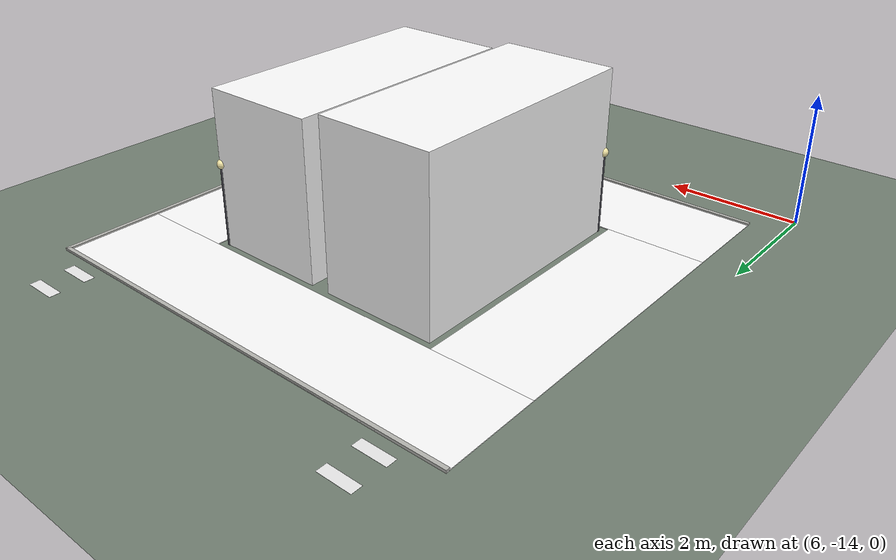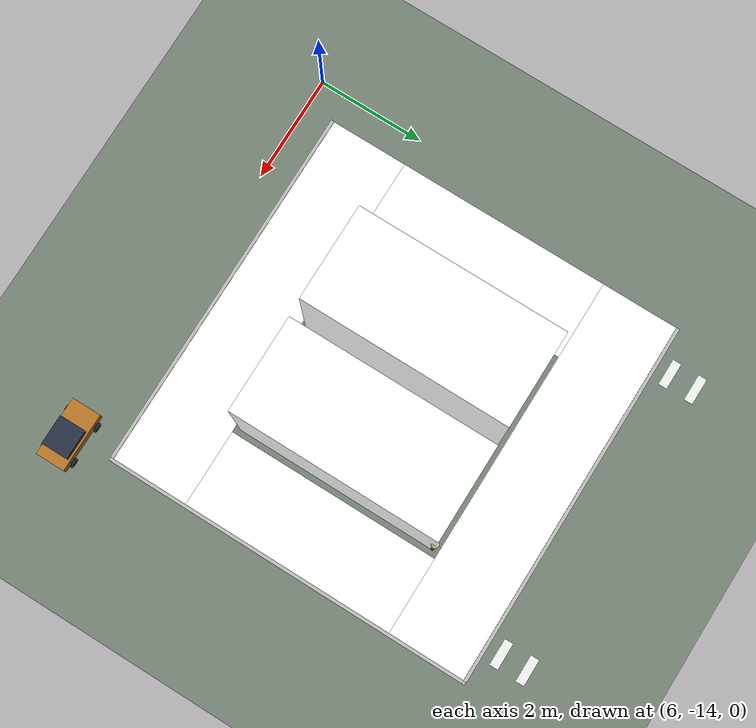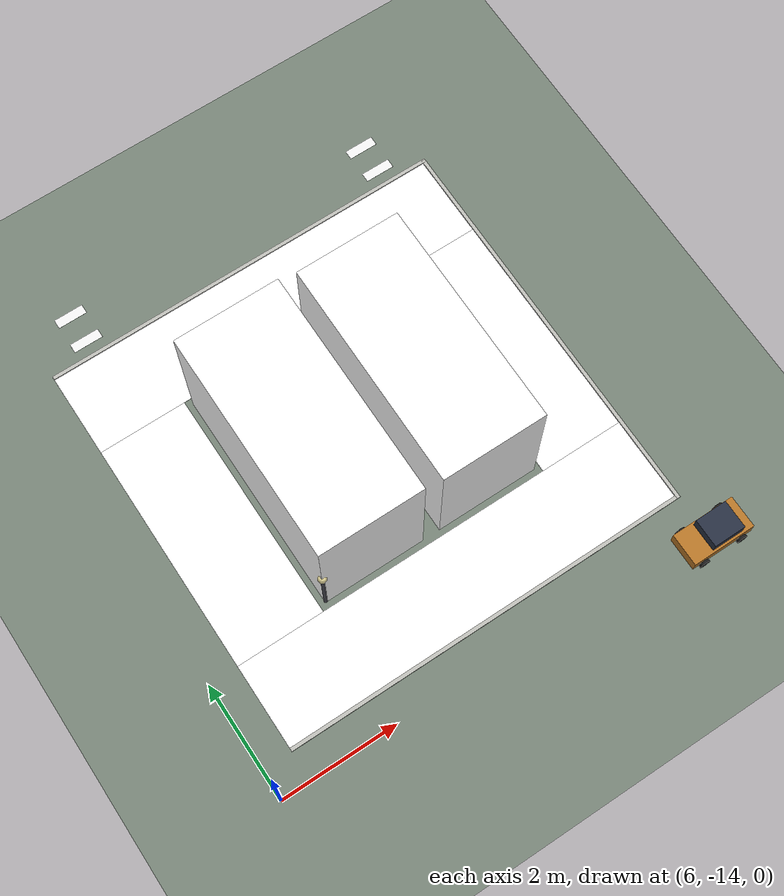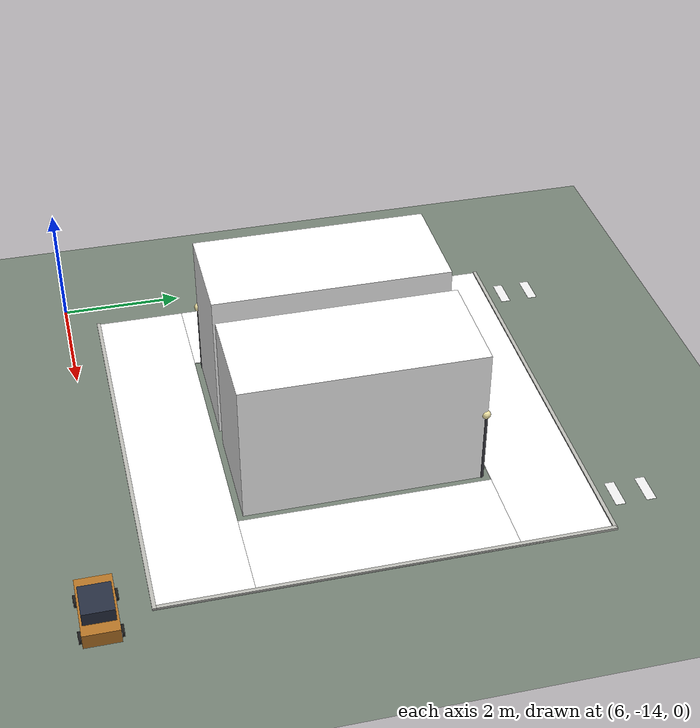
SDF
<sdf version="1.9">
 <world name="limo_city_blocks">
  <model name="ground_plane">
   <static>true</static>
   <link name="link">
    <collision name="collision">
     <geometry><plane><normal>0 0 1</normal><size>53 53</size></plane></geometry>
     <surface><friction><ode><mu>0.8</mu><mu2>0.8</mu2></ode></friction></surface>
    </collision>
    <visual name="visual">
     <geometry><plane><normal>0 0 1</normal><size>53 53</size></plane></geometry>
     <material><ambient>0.45 0.5 0.45 1</ambient><diffuse>0.45 0.5 0.45 1</diffuse></material>
    </visual>
   </link>
  </model>
  <model name="walk_s_2_0">
   <static>true</static>
   <pose>10.000 -12.750 0.008 0 0 0.000</pose>
   <link name="link">
    <visual name="visual">
     <geometry><box><size>7.000 1.500 0.012</size></box></geometry>
     <material>
      <ambient>1 1 1 1</ambient>
      <diffuse>1 1 1 1</diffuse>
      <pbr>
       <metal>
        <albedo_map>model://city_textures/paving.png</albedo_map>
        <roughness>0.85</roughness>
        <metalness>0.0</metalness>
       </metal>
      </pbr>
     </material>
    </visual>
   </link>
  </model>
  <model name="walk_n_2_0">
   <static>true</static>
   <pose>10.000 -7.250 0.008 0 0 0.000</pose>
   <link name="link">
    <visual name="visual">
     <geometry><box><size>7.000 1.500 0.012</size></box></geometry>
     <material>
      <ambient>1 1 1 1</ambient>
      <diffuse>1 1 1 1</diffuse>
      <pbr>
       <metal>
        <albedo_map>model://city_textures/paving.png</albedo_map>
        <roughness>0.85</roughness>
        <metalness>0.0</metalness>
       </metal>
      </pbr>
     </material>
    </visual>
   </link>
  </model>
  <model name="walk_w_2_0">
   <static>true</static>
   <pose>7.250 -10.000 0.008 0 0 0.000</pose>
   <link name="link">
    <visual name="visual">
     <geometry><box><size>1.500 4.000 0.012</size></box></geometry>
     <material>
      <ambient>1 1 1 1</ambient>
      <diffuse>1 1 1 1</diffuse>
      <pbr>
       <metal>
        <albedo_map>model://city_textures/paving.png</albedo_map>
        <roughness>0.85</roughness>
        <metalness>0.0</metalness>
       </metal>
      </pbr>
     </material>
    </visual>
   </link>
  </model>
  <model name="walk_e_2_0">
   <static>true</static>
   <pose>12.750 -10.000 0.008 0 0 0.000</pose>
   <link name="link">
    <visual name="visual">
     <geometry><box><size>1.500 4.000 0.012</size></box></geometry>
     <material>
      <ambient>1 1 1 1</ambient>
      <diffuse>1 1 1 1</diffuse>
      <pbr>
       <metal>
        <albedo_map>model://city_textures/paving.png</albedo_map>
        <roughness>0.85</roughness>
        <metalness>0.0</metalness>
       </metal>
      </pbr>
     </material>
    </visual>
   </link>
  </model>
  <model name="curb_s_2_0">
   <static>true</static>
   <pose>10.000 -13.470 0.020 0 0 0.000</pose>
   <link name="link">
    <visual name="visual">
     <geometry><box><size>7.000 0.060 0.040</size></box></geometry>
     <material><ambient>0.72 0.72 0.7 1</ambient><diffuse>0.72 0.72 0.7 1</diffuse></material>
    </visual>
   </link>
  </model>
  <model name="curb_n_2_0">
   <static>true</static>
   <pose>10.000 -6.530 0.020 0 0 0.000</pose>
   <link name="link">
    <visual name="visual">
     <geometry><box><size>7.000 0.060 0.040</size></box></geometry>
     <material><ambient>0.72 0.72 0.7 1</ambient><diffuse>0.72 0.72 0.7 1</diffuse></material>
    </visual>
   </link>
  </model>
  <model name="curb_e_2_0">
   <static>true</static>
   <pose>13.470 -10.000 0.020 0 0 0.000</pose>
   <link name="link">
    <visual name="visual">
     <geometry><box><size>0.060 7.000 0.040</size></box></geometry>
     <material><ambient>0.72 0.72 0.7 1</ambient><diffuse>0.72 0.72 0.7 1</diffuse></material>
    </visual>
   </link>
  </model>
  <model name="lamp_12">
   <static>true</static>
   <pose>8.120 -11.880 0 0 0 0</pose>
   <link name="link">
    <collision name="collision">
     <pose>0 0 0.6 0 0 0</pose>
     <geometry><cylinder><radius>0.03</radius><length>1.2</length></cylinder></geometry>
    </collision>
    <visual name="pole">
     <pose>0 0 0.6 0 0 0</pose>
     <geometry><cylinder><radius>0.03</radius><length>1.2</length></cylinder></geometry>
     <material><ambient>0.2 0.2 0.22 1</ambient><diffuse>0.25 0.25 0.28 1</diffuse></material>
    </visual>
    <visual name="head">
     <pose>0 0 1.25 0 0 0</pose>
     <geometry><sphere><radius>0.07</radius></sphere></geometry>
     <material>
      <ambient>0.9 0.85 0.6 1</ambient>
      <diffuse>0.95 0.9 0.65 1</diffuse>
      <emissive>0.5 0.45 0.25 1</emissive>
     </material>
    </visual>
   </link>
  </model>
  <model name="lamp_13">
   <static>true</static>
   <pose>11.880 -8.120 0 0 0 0</pose>
   <link name="link">
    <collision name="collision">
     <pose>0 0 0.6 0 0 0</pose>
     <geometry><cylinder><radius>0.03</radius><length>1.2</length></cylinder></geometry>
    </collision>
    <visual name="pole">
     <pose>0 0 0.6 0 0 0</pose>
     <geometry><cylinder><radius>0.03</radius><length>1.2</length></cylinder></geometry>
     <material><ambient>0.2 0.2 0.22 1</ambient><diffuse>0.25 0.25 0.28 1</diffuse></material>
    </visual>
    <visual name="head">
     <pose>0 0 1.25 0 0 0</pose>
     <geometry><sphere><radius>0.07</radius></sphere></geometry>
     <material>
      <ambient>0.9 0.85 0.6 1</ambient>
      <diffuse>0.95 0.9 0.65 1</diffuse>
      <emissive>0.5 0.45 0.25 1</emissive>
     </material>
    </visual>
   </link>
  </model>
  <model name="zebra_16_0">
   <static>true</static>
   <pose>7.250 -6.250 0.013 0 0 0.000</pose>
   <link name="link">
    <visual name="visual">
     <geometry><box><size>0.500 0.160 0.002</size></box></geometry>
     <material><ambient>0.92 0.92 0.92 1</ambient><diffuse>0.92 0.92 0.92 1</diffuse></material>
    </visual>
   </link>
  </model>
  <model name="zebra_16_1">
   <static>true</static>
   <pose>7.250 -5.750 0.013 0 0 0.000</pose>
   <link name="link">
    <visual name="visual">
     <geometry><box><size>0.500 0.160 0.002</size></box></geometry>
     <material><ambient>0.92 0.92 0.92 1</ambient><diffuse>0.92 0.92 0.92 1</diffuse></material>
    </visual>
   </link>
  </model>
  <model name="zebra_17_0">
   <static>true</static>
   <pose>12.750 -6.250 0.013 0 0 0.000</pose>
   <link name="link">
    <visual name="visual">
     <geometry><box><size>0.500 0.160 0.002</size></box></geometry>
     <material><ambient>0.92 0.92 0.92 1</ambient><diffuse>0.92 0.92 0.92 1</diffuse></material>
    </visual>
   </link>
  </model>
  <model name="zebra_17_1">
   <static>true</static>
   <pose>12.750 -5.750 0.013 0 0 0.000</pose>
   <link name="link">
    <visual name="visual">
     <geometry><box><size>0.500 0.160 0.002</size></box></geometry>
     <material><ambient>0.92 0.92 0.92 1</ambient><diffuse>0.92 0.92 0.92 1</diffuse></material>
    </visual>
   </link>
  </model>
  <model name="building_8">
   <static>true</static>
   <pose>8.975 -10.000 1.246 0 0 0.000</pose>
   <link name="link">
    <collision name="collision"><geometry><box><size>1.750 3.800 2.493</size></box></geometry></collision>
    <visual name="visual">
     <geometry><box><size>1.750 3.800 2.493</size></box></geometry>
     <material>
      <ambient>1 1 1 1</ambient>
      <diffuse>1 1 1 1</diffuse>
      <pbr>
       <metal>
        <albedo_map>model://city_textures/facade_4.png</albedo_map>
        <roughness>0.85</roughness>
        <metalness>0.0</metalness>
       </metal>
      </pbr>
     </material>
    </visual>
   </link>
  </model>
  <model name="building_9">
   <static>true</static>
   <pose>11.025 -10.000 1.178 0 0 0.000</pose>
   <link name="link">
    <collision name="collision"><geometry><box><size>1.750 3.800 2.355</size></box></geometry></collision>
    <visual name="visual">
     <geometry><box><size>1.750 3.800 2.355</size></box></geometry>
     <material>
      <ambient>1 1 1 1</ambient>
      <diffuse>1 1 1 1</diffuse>
      <pbr>
       <metal>
        <albedo_map>model://city_textures/facade_2.png</albedo_map>
        <roughness>0.85</roughness>
        <metalness>0.0</metalness>
       </metal>
      </pbr>
     </material>
    </visual>
   </link>
  </model>
  <model name="vehicle_7_car">
   <static>false</static>
   <pose>13.500 -14.250 0 0 0 3.142</pose>
   <link name="body">
    <kinematic>true</kinematic>
    <collision name="collision">
     <pose>0 0 0.2 0 0 0</pose>
     <geometry><box><size>1.10 0.55 0.40</size></box></geometry>
    </collision>
    <visual name="body_v">
     <pose>0 0 0.20 0 0 0</pose>
     <geometry><box><size>1.10 0.55 0.24</size></box></geometry>
     <material>
      <ambient>0.7 0.45 0.15 1</ambient>
      <diffuse>0.7 0.45 0.15 1</diffuse>
      <specular>0.4 0.4 0.4 1</specular>
     </material>
    </visual>
    <visual name="cabin">
     <pose>-0.08 0 0.42 0 0 0</pose>
     <geometry><box><size>0.55 0.48 0.22</size></box></geometry>
     <material>
      <ambient>0.12 0.15 0.2 1</ambient>
      <diffuse>0.15 0.18 0.25 1</diffuse>
      <specular>0.5 0.5 0.55 1</specular>
     </material>
    </visual>
    <visual name="wheel_0">
     <pose>0.35 0.29 0.09 1.5707 0 0</pose>
     <geometry><cylinder><radius>0.09</radius><length>0.06</length></cylinder></geometry>
     <material><ambient>0.08 0.08 0.08 1</ambient><diffuse>0.1 0.1 0.1 1</diffuse></material>
    </visual>
    <visual name="wheel_1">
     <pose>0.35 -0.29 0.09 1.5707 0 0</pose>
     <geometry><cylinder><radius>0.09</radius><length>0.06</length></cylinder></geometry>
     <material><ambient>0.08 0.08 0.08 1</ambient><diffuse>0.1 0.1 0.1 1</diffuse></material>
    </visual>
    <visual name="wheel_2">
     <pose>-0.35 0.29 0.09 1.5707 0 0</pose>
     <geometry><cylinder><radius>0.09</radius><length>0.06</length></cylinder></geometry>
     <material><ambient>0.08 0.08 0.08 1</ambient><diffuse>0.1 0.1 0.1 1</diffuse></material>
    </visual>
    <visual name="wheel_3">
     <pose>-0.35 -0.29 0.09 1.5707 0 0</pose>
     <geometry><cylinder><radius>0.09</radius><length>0.06</length></cylinder></geometry>
     <material><ambient>0.08 0.08 0.08 1</ambient><diffuse>0.1 0.1 0.1 1</diffuse></material>
    </visual>
   </link>
   <plugin filename="gz-sim-velocity-control-system" name="gz::sim::systems::VelocityControl"/>
   <plugin filename="gz-sim-pose-publisher-system" name="gz::sim::systems::PosePublisher">
    <publish_model_pose>true</publish_model_pose>
    <publish_link_pose>false</publish_link_pose>
    <publish_collision_pose>false</publish_collision_pose>
    <publish_visual_pose>false</publish_visual_pose>
    <publish_sensor_pose>false</publish_sensor_pose>
    <use_pose_vector_msg>false</use_pose_vector_msg>
    <update_frequency>15</update_frequency>
   </plugin>
  </model>
 </world>
</sdf>
